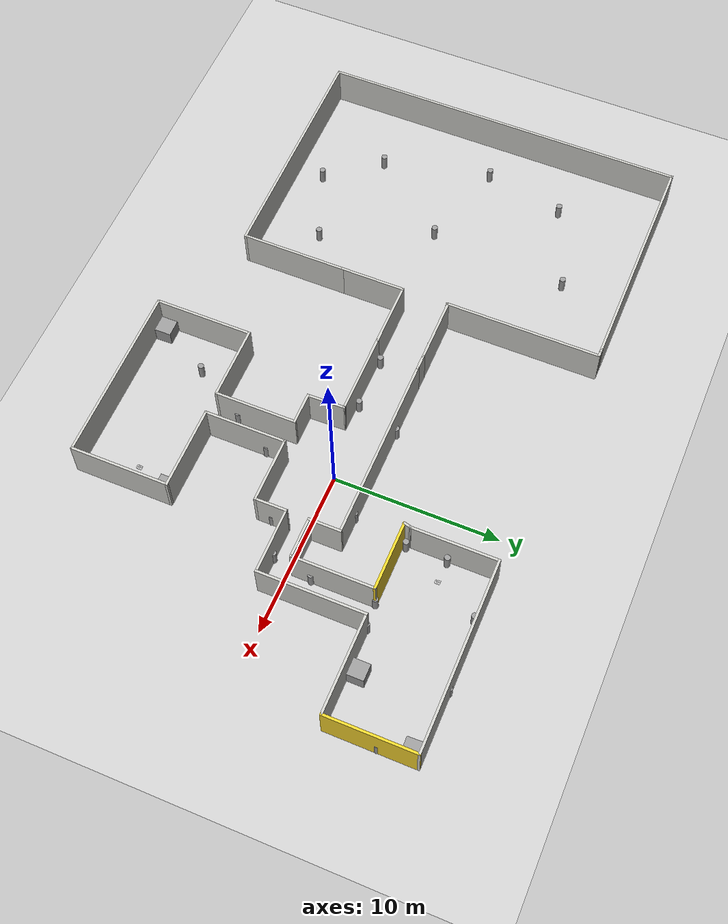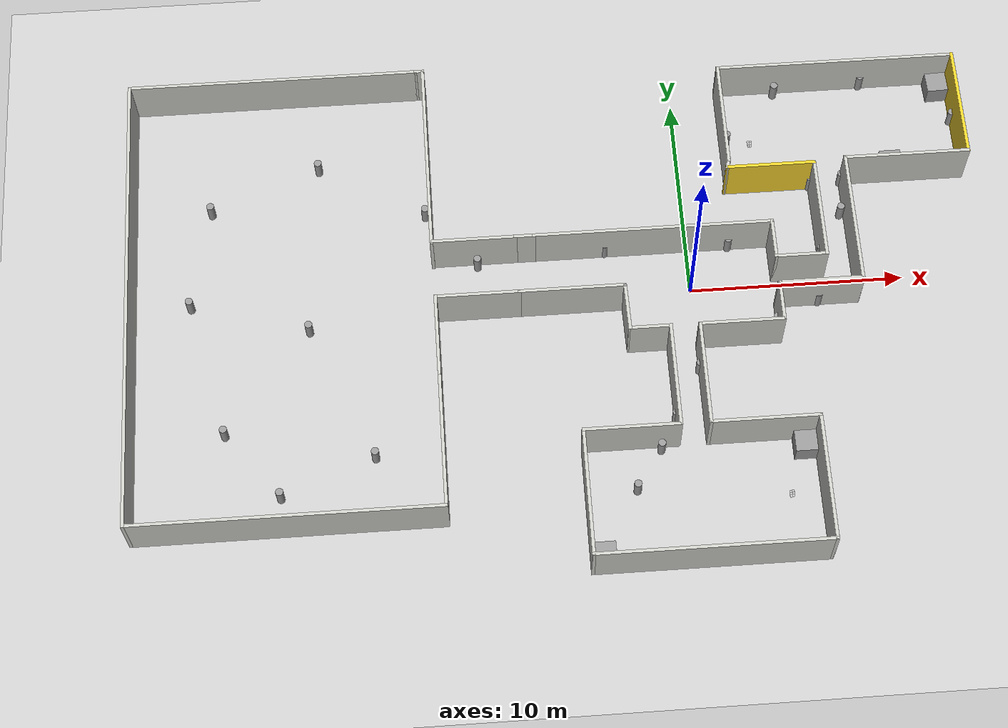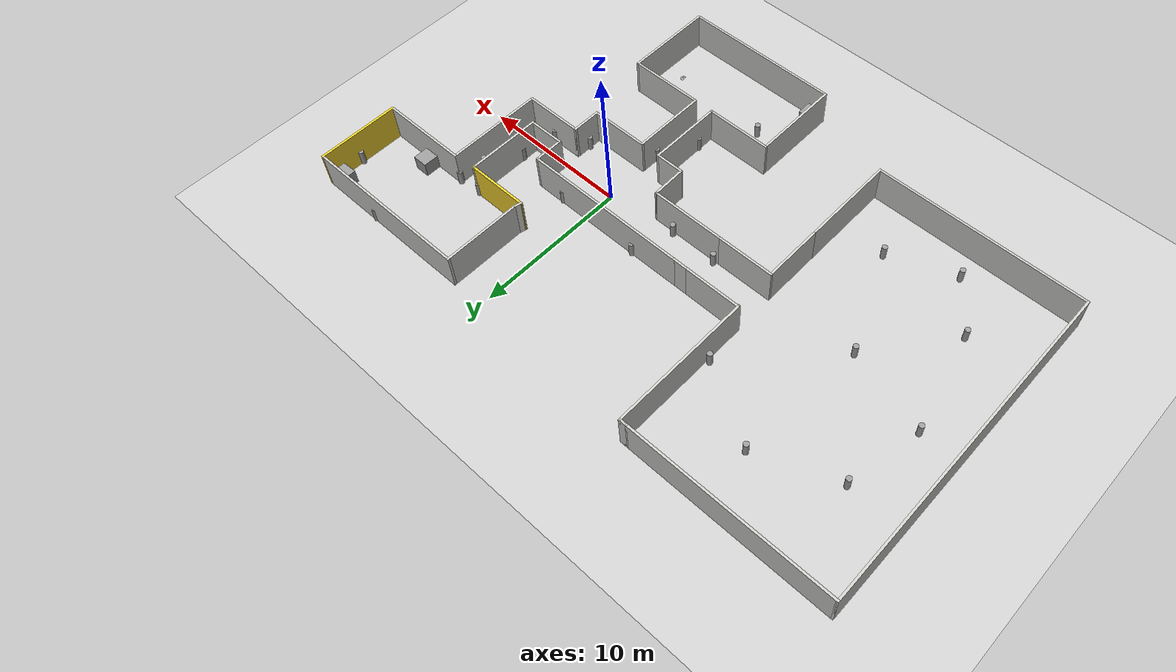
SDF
<sdf version="1.7">
 <world name="default">
  <light name="sun" type="directional">
   <pose>0 0 10 0 -0 0</pose>
   <diffuse>0.8 0.8 0.8 1</diffuse>
   <specular>0.2 0.2 0.2 1</specular>
   <attenuation>
    <range>1000</range>
    <constant>0.9</constant>
    <linear>0.01</linear>
    <quadratic>0.001</quadratic>
   </attenuation>
   <direction>-0.5 0.1 -0.9</direction>
   <spot><inner_angle>0</inner_angle><outer_angle>0</outer_angle><falloff>0</falloff></spot>
  </light>
  <model name="ground_plane">
   <static>1</static>
   <link name="link">
    <collision name="collision">
     <geometry><plane><normal>0 0 1</normal><size>100 100</size></plane></geometry>
     <surface><friction><ode><mu>100</mu><mu2>50</mu2></ode></friction></surface>
    </collision>
    <visual name="visual">
     <cast_shadows>0</cast_shadows>
     <geometry><plane><normal>0 0 1</normal><size>100 100</size></plane></geometry>
     <material>
      <script><uri>file://media/materials/scripts/gazebo.material</uri><name>Gazebo/Grey</name></script>
     </material>
    </visual>
   </link>
  </model>
  <gravity>0 0 -9.8</gravity>
  <magnetic_field>6e-06 2.3e-05 -4.2e-05</magnetic_field>
  <atmosphere type="adiabatic"/>
  <physics type="ode">
   <max_step_size>0.001</max_step_size>
   <real_time_factor>1</real_time_factor>
   <real_time_update_rate>1000</real_time_update_rate>
  </physics>
  <scene><ambient>0.4 0.4 0.4 1</ambient><background>0.7 0.7 0.7 1</background><shadows>1</shadows></scene>
  <audio><device>default</device></audio>
  <spherical_coordinates>
   <surface_model>EARTH_WGS84</surface_model>
   <latitude_deg>0</latitude_deg>
   <longitude_deg>0</longitude_deg>
   <elevation>0</elevation>
   <heading_deg>0</heading_deg>
  </spherical_coordinates>
  <model name="Prueba_3">
   <pose>-6.21353 -1.07107 0 0 -0 0</pose>
   <link name="Wall_13">
    <collision name="Wall_13_Collision">
     <geometry><box><size>2 0.15 2.5</size></box></geometry>
     <pose>0 0 1.25 0 -0 0</pose>
    </collision>
    <visual name="Wall_13_Visual">
     <pose>0 0 1.25 0 -0 0</pose>
     <geometry><box><size>2 0.15 2.5</size></box></geometry>
     <material>
      <script><uri>file://media/materials/scripts/gazebo.material</uri><name>Gazebo/CeilingTiled</name></script>
      <ambient>0.964706 0.827451 0.176471 1</ambient>
     </material>
     <meta><layer>0</layer></meta>
    </visual>
    <pose>10.1 -0.9 0 0 -0 -1.5708</pose>
   </link>
   <link name="Wall_17">
    <collision name="Wall_17_Collision">
     <geometry><box><size>4 0.15 2.5</size></box></geometry>
     <pose>0 0 1.25 0 -0 0</pose>
    </collision>
    <visual name="Wall_17_Visual">
     <pose>0 0 1.25 0 -0 0</pose>
     <geometry><box><size>4 0.15 2.5</size></box></geometry>
     <material>
      <script><uri>file://media/materials/scripts/gazebo.material</uri><name>Gazebo/CeilingTiled</name></script>
      <ambient>0.964706 0.827451 0.176471 1</ambient>
     </material>
     <meta><layer>0</layer></meta>
    </visual>
    <pose>8.175 -1.825 0 0 -0 3.14159</pose>
   </link>
   <link name="Wall_23">
    <collision name="Wall_23_Collision">
     <geometry><box><size>2 0.15 2.5</size></box></geometry>
     <pose>0 0 1.25 0 -0 0</pose>
    </collision>
    <visual name="Wall_23_Visual">
     <pose>0 0 1.25 0 -0 0</pose>
     <geometry><box><size>2 0.15 2.5</size></box></geometry>
     <material>
      <script><uri>file://media/materials/scripts/gazebo.material</uri><name>Gazebo/CeilingTiled</name></script>
      <ambient>0.964706 0.827451 0.176471 1</ambient>
     </material>
     <meta><layer>0</layer></meta>
    </visual>
    <pose>3.975 -1.825 0 0 -0 3.14159</pose>
   </link>
   <link name="Wall_39">
    <collision name="Wall_39_Collision">
     <geometry><box><size>11.25 0.15 2.5</size></box></geometry>
     <pose>0 0 1.25 0 -0 0</pose>
    </collision>
    <visual name="Wall_39_Visual">
     <pose>0 0 1.25 0 -0 0</pose>
     <geometry><box><size>11.25 0.15 2.5</size></box></geometry>
     <material>
      <script><uri>file://media/materials/scripts/gazebo.material</uri><name>Gazebo/CeilingTiled</name></script>
      <ambient>0.964706 0.827451 0.176471 1</ambient>
     </material>
     <meta><layer>0</layer></meta>
    </visual>
    <pose>4.55 3.225 0 0 -0 3.14159</pose>
   </link>
   <link name="Wall_41">
    <collision name="Wall_41_Collision">
     <geometry><box><size>1 0.15 2.5</size></box></geometry>
     <pose>0 0 1.25 0 -0 0</pose>
    </collision>
    <visual name="Wall_41_Visual">
     <pose>0 0 1.25 0 -0 0</pose>
     <geometry><box><size>1 0.15 2.5</size></box></geometry>
     <material>
      <script><uri>file://media/materials/scripts/gazebo.material</uri><name>Gazebo/CeilingTiled</name></script>
      <ambient>0.964706 0.827451 0.176471 1</ambient>
     </material>
     <meta><layer>0</layer></meta>
    </visual>
    <pose>-1.425 3.225 0 0 -0 3.14159</pose>
   </link>
   <link name="Wall_44">
    <collision name="Wall_44_Collision">
     <geometry><box><size>5 0.15 2.5</size></box></geometry>
     <pose>0 0 1.25 0 -0 0</pose>
    </collision>
    <visual name="Wall_44_Visual">
     <pose>0 0 1.25 0 -0 0</pose>
     <geometry><box><size>5 0.15 2.5</size></box></geometry>
     <material>
      <script><uri>file://media/materials/scripts/gazebo.material</uri><name>Gazebo/CeilingTiled</name></script>
      <ambient>0.964706 0.827451 0.176471 1</ambient>
     </material>
     <meta><layer>0</layer></meta>
    </visual>
    <pose>0.575 0.375 0 0 -0 0</pose>
   </link>
   <link name="Wall_45">
    <collision name="Wall_45_Collision">
     <geometry><box><size>0.15 0.15 2.5</size></box></geometry>
     <pose>0 0 1.25 0 -0 0</pose>
    </collision>
    <visual name="Wall_45_Visual">
     <pose>0 0 1.25 0 -0 0</pose>
     <geometry><box><size>0.15 0.15 2.5</size></box></geometry>
     <material>
      <script><uri>file://media/materials/scripts/gazebo.material</uri><name>Gazebo/Grey</name></script>
      <ambient>1 1 1 1</ambient>
     </material>
     <meta><layer>0</layer></meta>
    </visual>
    <pose>3 0.375 0 0 -0 0</pose>
   </link>
   <link name="Wall_46">
    <collision name="Wall_46_Collision">
     <geometry><box><size>2.35057 0.15 2.5</size></box></geometry>
     <pose>0 0 1.25 0 -0 0</pose>
    </collision>
    <visual name="Wall_46_Visual">
     <pose>0 0 1.25 0 -0 0</pose>
     <geometry><box><size>2.35057 0.15 2.5</size></box></geometry>
     <material>
      <script><uri>file://media/materials/scripts/gazebo.material</uri><name>Gazebo/CeilingTiled</name></script>
      <ambient>0.964706 0.827451 0.176471 1</ambient>
     </material>
     <meta><layer>0</layer></meta>
    </visual>
    <pose>3.025 -0.725 0 0 -0 -1.54807</pose>
   </link>
   <link name="Wall_48">
    <collision name="Wall_48_Collision">
     <geometry><box><size>5 0.15 2.5</size></box></geometry>
     <pose>0 0 1.25 0 -0 0</pose>
    </collision>
    <visual name="Wall_48_Visual">
     <pose>0 0 1.25 0 -0 0</pose>
     <geometry><box><size>5 0.15 2.5</size></box></geometry>
     <material>
      <script><uri>file://media/materials/scripts/gazebo.material</uri><name>Gazebo/CeilingTiled</name></script>
      <ambient>0.964706 0.827451 0.176471 1</ambient>
     </material>
     <meta><layer>0</layer></meta>
    </visual>
    <pose>4.9 -4.25 0 0 -0 -1.5708</pose>
   </link>
   <link name="Wall_50">
    <collision name="Wall_50_Collision">
     <geometry><box><size>5 0.15 2.5</size></box></geometry>
     <pose>0 0 1.25 0 -0 0</pose>
    </collision>
    <visual name="Wall_50_Visual">
     <pose>0 0 1.25 0 -0 0</pose>
     <geometry><box><size>5 0.15 2.5</size></box></geometry>
     <material>
      <script><uri>file://media/materials/scripts/gazebo.material</uri><name>Gazebo/CeilingTiled</name></script>
      <ambient>0.964706 0.827451 0.176471 1</ambient>
     </material>
     <meta><layer>0</layer></meta>
    </visual>
    <pose>6.25 -4.25 0 0 -0 -1.5708</pose>
   </link>
   <link name="Wall_52">
    <collision name="Wall_52_Collision">
     <geometry><box><size>4 0.15 2.5</size></box></geometry>
     <pose>0 0 1.25 0 -0 0</pose>
    </collision>
    <visual name="Wall_52_Visual">
     <pose>0 0 1.25 0 -0 0</pose>
     <geometry><box><size>4 0.15 2.5</size></box></geometry>
     <material>
      <script><uri>file://media/materials/scripts/gazebo.material</uri><name>Gazebo/CeilingTiled</name></script>
      <ambient>0.964706 0.827451 0.176471 1</ambient>
     </material>
     <meta><layer>0</layer></meta>
    </visual>
    <pose>12.025 0.025 0 0 -0 0</pose>
   </link>
   <link name="Wall_54">
    <collision name="Wall_54_Collision">
     <geometry><box><size>2.5 0.15 2.5</size></box></geometry>
     <pose>0 0 1.25 0 -0 0</pose>
    </collision>
    <visual name="Wall_54_Visual">
     <pose>0 0 1.25 0 -0 0</pose>
     <geometry><box><size>2.5 0.15 2.5</size></box></geometry>
     <material>
      <script><uri>file://media/materials/scripts/gazebo.material</uri><name>Gazebo/CeilingTiled</name></script>
      <ambient>0.964706 0.827451 0.176471 1</ambient>
     </material>
     <meta><layer>0</layer></meta>
    </visual>
    <pose>11.275 1.375 0 0 -0 0</pose>
   </link>
   <link name="Wall_57">
    <collision name="Wall_57_Collision">
     <geometry><box><size>5 0.15 2.5</size></box></geometry>
     <pose>0 0 1.25 0 -0 0</pose>
    </collision>
    <visual name="Wall_57_Visual">
     <pose>0 0 1.25 0 -0 0</pose>
     <geometry><box><size>5 0.15 2.5</size></box></geometry>
     <material>
      <script><uri>file://media/materials/scripts/gazebo.material</uri><name>Gazebo/CeilingTiled</name></script>
      <ambient>0.964706 0.827451 0.176471 1</ambient>
     </material>
     <meta><layer>0</layer></meta>
    </visual>
    <pose>12.45 3.8 0 0 -0 1.5708</pose>
   </link>
   <link name="Wall_6">
    <collision name="Wall_6_Collision">
     <geometry><box><size>2 0.15 2.5</size></box></geometry>
     <pose>0 0 1.25 0 -0 0</pose>
    </collision>
    <visual name="Wall_6_Visual">
     <pose>0 0 1.25 0 -0 0</pose>
     <geometry><box><size>2 0.15 2.5</size></box></geometry>
     <material>
      <script><uri>file://media/materials/scripts/gazebo.material</uri><name>Gazebo/CeilingTiled</name></script>
      <ambient>0.964706 0.827451 0.176471 1</ambient>
     </material>
     <meta><layer>0</layer></meta>
    </visual>
    <pose>10.1 2.3 0 0 -0 -1.5708</pose>
   </link>
   <link name="Wall_60">
    <collision name="Wall_60_Collision">
     <geometry><box><size>6.5 0.15 2.5</size></box></geometry>
     <pose>0 0 1.25 0 -0 0</pose>
    </collision>
    <visual name="Wall_60_Visual">
     <pose>0 0 1.25 0 -0 0</pose>
     <geometry><box><size>6.5 0.15 2.5</size></box></geometry>
     <material>
      <script><uri>file://media/materials/scripts/gazebo.material</uri><name>Gazebo/CeilingTiled</name></script>
      <ambient>0.964706 0.827451 0.176471 1</ambient>
     </material>
     <meta><layer>0</layer></meta>
    </visual>
    <pose>13.95 3.2 0 0 -0 1.5708</pose>
   </link>
   <link name="Wall_61">
    <collision name="Wall_61_Collision">
     <geometry><box><size>6 0.15 2.5</size></box></geometry>
     <pose>0 0 1.25 0 -0 0</pose>
    </collision>
    <visual name="Wall_61_Visual">
     <pose>0 0 1.25 0 -0 0</pose>
     <geometry><box><size>6 0.15 2.5</size></box></geometry>
     <material>
      <script><uri>file://media/materials/scripts/gazebo.material</uri><name>Gazebo/CeilingTiled</name></script>
      <ambient>0.964706 0.827451 0.176471 1</ambient>
     </material>
     <meta><layer>0</layer></meta>
    </visual>
    <pose>16.875 6.375 0 0 -0 0</pose>
   </link>
   <link name="Wall_62">
    <collision name="Wall_62_Collision">
     <geometry><box><size>5.5 0.15 2.5</size></box></geometry>
     <pose>0 0 1.25 0 -0 0</pose>
    </collision>
    <visual name="Wall_62_Visual">
     <pose>0 0 1.25 0 -0 0</pose>
     <geometry><box><size>5.5 0.15 2.5</size></box></geometry>
     <material>
      <script><uri>file://media/materials/scripts/gazebo.material</uri><name>Gazebo/Grey</name></script>
      <ambient>0.964706 0.827451 0.176471 1</ambient>
     </material>
     <meta><layer>0</layer></meta>
    </visual>
    <pose>19.8 9.05 0 0 -0 1.5708</pose>
   </link>
   <link name="Wall_63">
    <collision name="Wall_63_Collision">
     <geometry><box><size>11.5 0.15 2.5</size></box></geometry>
     <pose>0 0 1.25 0 -0 0</pose>
    </collision>
    <visual name="Wall_63_Visual">
     <pose>0 0 1.25 0 -0 0</pose>
     <geometry><box><size>11.5 0.15 2.5</size></box></geometry>
     <material>
      <script><uri>file://media/materials/scripts/gazebo.material</uri><name>Gazebo/CeilingTiled</name></script>
      <ambient>0.964706 0.827451 0.176471 1</ambient>
     </material>
     <meta><layer>0</layer></meta>
    </visual>
    <pose>14.125 11.725 0 0 -0 3.14159</pose>
   </link>
   <link name="Wall_64">
    <collision name="Wall_64_Collision">
     <geometry><box><size>5.25 0.15 2.5</size></box></geometry>
     <pose>0 0 1.25 0 -0 0</pose>
    </collision>
    <visual name="Wall_64_Visual">
     <pose>0 0 1.25 0 -0 0</pose>
     <geometry><box><size>5.25 0.15 2.5</size></box></geometry>
     <material>
      <script><uri>file://media/materials/scripts/gazebo.material</uri><name>Gazebo/CeilingTiled</name></script>
      <ambient>0.964706 0.827451 0.176471 1</ambient>
     </material>
     <meta><layer>0</layer></meta>
    </visual>
    <pose>8.45 9.175 0 0 -0 -1.5708</pose>
   </link>
   <link name="Wall_67">
    <collision name="Wall_67_Collision">
     <geometry><box><size>4.25 0.15 2.5</size></box></geometry>
     <pose>0 0 1.25 0 -0 0</pose>
    </collision>
    <visual name="Wall_67_Visual">
     <pose>0 0 1.25 0 -0 0</pose>
     <geometry><box><size>4.25 0.15 2.5</size></box></geometry>
     <material>
      <script><uri>file://media/materials/scripts/gazebo.material</uri><name>Gazebo/Grey</name></script>
      <ambient>0.964706 0.827451 0.176471 1</ambient>
     </material>
     <meta><layer>0</layer></meta>
    </visual>
    <pose>10.4 6.225 0 0 -0 3.14159</pose>
   </link>
   <link name="Wall_68">
    <collision name="Wall_68_Collision">
     <geometry><box><size>0.562311 0.15 2.5</size></box></geometry>
     <pose>0 0 1.25 0 -0 0</pose>
    </collision>
    <visual name="Wall_68_Visual">
     <pose>0 0 1.25 0 -0 0</pose>
     <geometry><box><size>0.562311 0.15 2.5</size></box></geometry>
     <material>
      <script><uri>file://media/materials/scripts/gazebo.material</uri><name>Gazebo/CeilingTiled</name></script>
      <ambient>0.964706 0.827451 0.176471 1</ambient>
     </material>
     <meta><layer>0</layer></meta>
    </visual>
    <pose>8.4 6.425 0 0 -0 1.32582</pose>
   </link>
   <link name="Wall_70">
    <collision name="Wall_70_Collision">
     <geometry><box><size>4.5 0.15 2.5</size></box></geometry>
     <pose>0 0 1.25 0 -0 0</pose>
    </collision>
    <visual name="Wall_70_Visual">
     <pose>0 0 1.25 0 -0 0</pose>
     <geometry><box><size>4.5 0.15 2.5</size></box></geometry>
     <material>
      <script><uri>file://media/materials/scripts/gazebo.material</uri><name>Gazebo/CeilingTiled</name></script>
      <ambient>0.964706 0.827451 0.176471 1</ambient>
     </material>
     <meta><layer>0</layer></meta>
    </visual>
    <pose>2.725 -6.675 0 0 -0 3.14159</pose>
   </link>
   <link name="Wall_71">
    <collision name="Wall_71_Collision">
     <geometry><box><size>6 0.15 2.5</size></box></geometry>
     <pose>0 0 1.25 0 -0 0</pose>
    </collision>
    <visual name="Wall_71_Visual">
     <pose>0 0 1.25 0 -0 0</pose>
     <geometry><box><size>6 0.15 2.5</size></box></geometry>
     <material>
      <script><uri>file://media/materials/scripts/gazebo.material</uri><name>Gazebo/CeilingTiled</name></script>
      <ambient>0.964706 0.827451 0.176471 1</ambient>
     </material>
     <meta><layer>0</layer></meta>
    </visual>
    <pose>0.55 -9.6 0 0 -0 -1.5708</pose>
   </link>
   <link name="Wall_72">
    <collision name="Wall_72_Collision">
     <geometry><box><size>10.75 0.15 2.5</size></box></geometry>
     <pose>0 0 1.25 0 -0 0</pose>
    </collision>
    <visual name="Wall_72_Visual">
     <pose>0 0 1.25 0 -0 0</pose>
     <geometry><box><size>10.75 0.15 2.5</size></box></geometry>
     <material>
      <script><uri>file://media/materials/scripts/gazebo.material</uri><name>Gazebo/CeilingTiled</name></script>
      <ambient>0.964706 0.827451 0.176471 1</ambient>
     </material>
     <meta><layer>0</layer></meta>
    </visual>
    <pose>5.85 -12.525 0 0 -0 0</pose>
   </link>
   <link name="Wall_73">
    <collision name="Wall_73_Collision">
     <geometry><box><size>6 0.15 2.5</size></box></geometry>
     <pose>0 0 1.25 0 -0 0</pose>
    </collision>
    <visual name="Wall_73_Visual">
     <pose>0 0 1.25 0 -0 0</pose>
     <geometry><box><size>6 0.15 2.5</size></box></geometry>
     <material>
      <script><uri>file://media/materials/scripts/gazebo.material</uri><name>Gazebo/CeilingTiled</name></script>
      <ambient>0.964706 0.827451 0.176471 1</ambient>
     </material>
     <meta><layer>0</layer></meta>
    </visual>
    <pose>11.15 -9.6 0 0 -0 1.5708</pose>
   </link>
   <link name="Wall_74">
    <collision name="Wall_74_Collision">
     <geometry><box><size>5.05 0.15 2.5</size></box></geometry>
     <pose>0 0 1.25 0 -0 0</pose>
    </collision>
    <visual name="Wall_74_Visual">
     <pose>0 0 1.25 0 -0 0</pose>
     <geometry><box><size>5.05 0.15 2.5</size></box></geometry>
     <material>
      <script><uri>file://media/materials/scripts/gazebo.material</uri><name>Gazebo/CeilingTiled</name></script>
      <ambient>0.964706 0.827451 0.176471 1</ambient>
     </material>
     <meta><layer>0</layer></meta>
    </visual>
    <pose>8.7 -6.675 0 0 -0 3.14159</pose>
   </link>
   <link name="Wall_77">
    <collision name="Wall_77_Collision">
     <geometry><box><size>4 0.15 2.5</size></box></geometry>
     <pose>0 0 1.25 0 -0 0</pose>
    </collision>
    <visual name="Wall_77_Visual">
     <pose>0 0 1.25 0 -0 0</pose>
     <geometry><box><size>4 0.15 2.5</size></box></geometry>
     <material>
      <script><uri>file://media/materials/scripts/gazebo.material</uri><name>Gazebo/CeilingTiled</name></script>
      <ambient>0.964706 0.827451 0.176471 1</ambient>
     </material>
     <meta><layer>0</layer></meta>
    </visual>
    <pose>-3.775 0.375 0 0 -0 3.14159</pose>
   </link>
   <link name="Wall_79">
    <collision name="Wall_79_Collision">
     <geometry><box><size>4 0.15 2.5</size></box></geometry>
     <pose>0 0 1.25 0 -0 0</pose>
    </collision>
    <visual name="Wall_79_Visual">
     <pose>0 0 1.25 0 -0 0</pose>
     <geometry><box><size>4 0.15 2.5</size></box></geometry>
     <material>
      <script><uri>file://media/materials/scripts/gazebo.material</uri><name>Gazebo/CeilingTiled</name></script>
      <ambient>0.964706 0.827451 0.176471 1</ambient>
     </material>
     <meta><layer>0</layer></meta>
    </visual>
    <pose>-3.775 3.225 0 0 -0 3.14159</pose>
   </link>
   <link name="Wall_81">
    <collision name="Wall_81_Collision">
     <geometry><box><size>4 0.15 2.5</size></box></geometry>
     <pose>0 0 1.25 0 -0 0</pose>
    </collision>
    <visual name="Wall_81_Visual">
     <pose>0 0 1.25 0 -0 0</pose>
     <geometry><box><size>4 0.15 2.5</size></box></geometry>
     <material>
      <script><uri>file://media/materials/scripts/gazebo.material</uri><name>Gazebo/CeilingTiled</name></script>
      <ambient>0.964706 0.827451 0.176471 1</ambient>
     </material>
     <meta><layer>0</layer></meta>
    </visual>
    <pose>-5.7 -1.55 0 0 -0 -1.5708</pose>
   </link>
   <link name="Wall_85">
    <collision name="Wall_85_Collision">
     <geometry><box><size>6.5 0.15 2.5</size></box></geometry>
     <pose>0 0 1.25 0 -0 0</pose>
    </collision>
    <visual name="Wall_85_Visual">
     <pose>0 0 1.25 0 -0 0</pose>
     <geometry><box><size>6.5 0.15 2.5</size></box></geometry>
     <material>
      <script><uri>file://media/materials/scripts/gazebo.material</uri><name>Gazebo/CeilingTiled</name></script>
      <ambient>0.964706 0.827451 0.176471 1</ambient>
     </material>
     <meta><layer>0</layer></meta>
    </visual>
    <pose>-5.7 -6.65 0 0 -0 -1.5708</pose>
   </link>
   <link name="Wall_86">
    <collision name="Wall_86_Collision">
     <geometry><box><size>14.25 0.15 2.5</size></box></geometry>
     <pose>0 0 1.25 0 -0 0</pose>
    </collision>
    <visual name="Wall_86_Visual">
     <pose>0 0 1.25 0 -0 0</pose>
     <geometry><box><size>14.25 0.15 2.5</size></box></geometry>
     <material>
      <script><uri>file://media/materials/scripts/gazebo.material</uri><name>Gazebo/CeilingTiled</name></script>
      <ambient>0.964706 0.827451 0.176471 1</ambient>
     </material>
     <meta><layer>0</layer></meta>
    </visual>
    <pose>-12.75 -9.825 0 0 -0 3.14159</pose>
   </link>
   <link name="Wall_87">
    <collision name="Wall_87_Collision">
     <geometry><box><size>22.5 0.15 2.5</size></box></geometry>
     <pose>0 0 1.25 0 -0 0</pose>
    </collision>
    <visual name="Wall_87_Visual">
     <pose>0 0 1.25 0 -0 0</pose>
     <geometry><box><size>22.5 0.15 2.5</size></box></geometry>
     <material>
      <script><uri>file://media/materials/scripts/gazebo.material</uri><name>Gazebo/CeilingTiled</name></script>
      <ambient>0.964706 0.827451 0.176471 1</ambient>
     </material>
     <meta><layer>0</layer></meta>
    </visual>
    <pose>-19.8 1.35 0 0 -0 1.5708</pose>
   </link>
   <link name="Wall_88">
    <collision name="Wall_88_Collision">
     <geometry><box><size>13.75 0.15 2.5</size></box></geometry>
     <pose>0 0 1.25 0 -0 0</pose>
    </collision>
    <visual name="Wall_88_Visual">
     <pose>0 0 1.25 0 -0 0</pose>
     <geometry><box><size>13.75 0.15 2.5</size></box></geometry>
     <material>
      <script><uri>file://media/materials/scripts/gazebo.material</uri><name>Gazebo/CeilingTiled</name></script>
      <ambient>0.964706 0.827451 0.176471 1</ambient>
     </material>
     <meta><layer>0</layer></meta>
    </visual>
    <pose>-13 12.525 0 0 -0 0</pose>
   </link>
   <link name="Wall_89">
    <collision name="Wall_89_Collision">
     <geometry><box><size>0.25 0.15 2.5</size></box></geometry>
     <pose>0 0 1.25 0 -0 0</pose>
    </collision>
    <visual name="Wall_89_Visual">
     <pose>0 0 1.25 0 -0 0</pose>
     <geometry><box><size>0.25 0.15 2.5</size></box></geometry>
     <material>
      <script><uri>file://media/materials/scripts/gazebo.material</uri><name>Gazebo/CeilingTiled</name></script>
      <ambient>0.964706 0.827451 0.176471 1</ambient>
     </material>
     <meta><layer>0</layer></meta>
    </visual>
    <pose>-6.15 12.525 0 0 -0 0</pose>
   </link>
   <link name="Wall_90">
    <collision name="Wall_90_Collision">
     <geometry><box><size>0.5 0.15 2.5</size></box></geometry>
     <pose>0 0 1.25 0 -0 0</pose>
    </collision>
    <visual name="Wall_90_Visual">
     <pose>0 0 1.25 0 -0 0</pose>
     <geometry><box><size>0.5 0.15 2.5</size></box></geometry>
     <material>
      <script><uri>file://media/materials/scripts/gazebo.material</uri><name>Gazebo/CeilingTiled</name></script>
      <ambient>0.964706 0.827451 0.176471 1</ambient>
     </material>
     <meta><layer>0</layer></meta>
    </visual>
    <pose>-5.925 12.525 0 0 -0 0</pose>
   </link>
   <link name="Wall_91">
    <collision name="Wall_91_Collision">
     <geometry><box><size>9.5 0.15 2.5</size></box></geometry>
     <pose>0 0 1.25 0 -0 0</pose>
    </collision>
    <visual name="Wall_91_Visual">
     <pose>0 0 1.25 0 -0 0</pose>
     <geometry><box><size>9.5 0.15 2.5</size></box></geometry>
     <material>
      <script><uri>file://media/materials/scripts/gazebo.material</uri><name>Gazebo/CeilingTiled</name></script>
      <ambient>0.964706 0.827451 0.176471 1</ambient>
     </material>
     <meta><layer>0</layer></meta>
    </visual>
    <pose>-5.75 7.85 0 0 -0 -1.5708</pose>
   </link>
   <static>1</static>
  </model>
  <model name="unit_box">
   <pose>-5.08182 -13.0144 0.5 0 -0 0.012138</pose>
   <link name="link">
    <inertial>
     <mass>1</mass>
     <inertia>
      <ixx>0.166667</ixx>
      <ixy>0</ixy>
      <ixz>0</ixz>
      <iyy>0.166667</iyy>
      <iyz>0</iyz>
      <izz>0.166667</izz>
     </inertia>
    </inertial>
    <collision name="collision"><geometry><box><size>1 1 1</size></box></geometry></collision>
    <visual name="visual">
     <geometry><box><size>1 1 1</size></box></geometry>
     <material>
      <script><name>Gazebo/Grey</name><uri>file://media/materials/scripts/gazebo.material</uri></script>
     </material>
    </visual>
   </link>
  </model>
  <model name="unit_box_0">
   <pose>4.36122 -8.32108 0.5 0 -0 6e-06</pose>
   <link name="link">
    <inertial>
     <mass>1</mass>
     <inertia>
      <ixx>0.166667</ixx>
      <ixy>0</ixy>
      <ixz>0</ixz>
      <iyy>0.166667</iyy>
      <iyz>0</iyz>
      <izz>0.166667</izz>
     </inertia>
    </inertial>
    <collision name="collision"><geometry><box><size>1 1 1</size></box></geometry></collision>
    <visual name="visual">
     <geometry><box><size>1 1 1</size></box></geometry>
     <material>
      <script><name>Gazebo/Grey</name><uri>file://media/materials/scripts/gazebo.material</uri></script>
     </material>
    </visual>
   </link>
  </model>
  <model name="unit_cylinder">
   <pose>-3.3537 -9.88396 0.499994 0 -0 1.2e-05</pose>
   <link name="link">
    <inertial>
     <mass>1</mass>
     <inertia><ixx>0.145833</ixx><ixy>0</ixy><ixz>0</ixz><iyy>0.145833</iyy><iyz>0</iyz><izz>0.125</izz></inertia>
    </inertial>
    <collision name="collision">
     <geometry><cylinder><radius>0.176638</radius><length>1</length></cylinder></geometry>
    </collision>
    <visual name="visual">
     <geometry><cylinder><radius>0.176638</radius><length>1</length></cylinder></geometry>
     <material>
      <script><name>Gazebo/Grey</name><uri>file://media/materials/scripts/gazebo.material</uri></script>
     </material>
    </visual>
   </link>
  </model>
  <model name="unit_cylinder_clone">
   <pose>-2.11066 -7.99771 0.499997 0 -0 7.3e-05</pose>
   <link name="link">
    <inertial>
     <mass>1</mass>
     <inertia><ixx>0.145833</ixx><ixy>0</ixy><ixz>0</ixz><iyy>0.145833</iyy><iyz>0</iyz><izz>0.125</izz></inertia>
    </inertial>
    <collision name="collision">
     <geometry><cylinder><radius>0.176638</radius><length>1</length></cylinder></geometry>
    </collision>
    <visual name="visual">
     <geometry><cylinder><radius>0.176638</radius><length>1</length></cylinder></geometry>
     <material>
      <script><name>Gazebo/Grey</name><uri>file://media/materials/scripts/gazebo.material</uri></script>
     </material>
    </visual>
   </link>
  </model>
  <model name="unit_cylinder_clone_0">
   <pose>-1.31414 -6.53553 0.499999 0 -0 7e-06</pose>
   <link name="link">
    <inertial>
     <mass>1</mass>
     <inertia><ixx>0.145833</ixx><ixy>0</ixy><ixz>0</ixz><iyy>0.145833</iyy><iyz>0</iyz><izz>0.125</izz></inertia>
    </inertial>
    <collision name="collision">
     <geometry><cylinder><radius>0.176638</radius><length>1</length></cylinder></geometry>
    </collision>
    <visual name="visual">
     <geometry><cylinder><radius>0.176638</radius><length>1</length></cylinder></geometry>
     <material>
      <script><name>Gazebo/Grey</name><uri>file://media/materials/scripts/gazebo.material</uri></script>
     </material>
    </visual>
   </link>
  </model>
  <model name="unit_cylinder_clone_1">
   <pose>0.005123 -4.14459 0.499991 0 -0 6e-06</pose>
   <link name="link">
    <inertial>
     <mass>1</mass>
     <inertia><ixx>0.145833</ixx><ixy>0</ixy><ixz>0</ixz><iyy>0.145833</iyy><iyz>0</iyz><izz>0.125</izz></inertia>
    </inertial>
    <collision name="collision">
     <geometry><cylinder><radius>0.176638</radius><length>1</length></cylinder></geometry>
    </collision>
    <visual name="visual">
     <geometry><cylinder><radius>0.176638</radius><length>1</length></cylinder></geometry>
     <material>
      <script><name>Gazebo/Grey</name><uri>file://media/materials/scripts/gazebo.material</uri></script>
     </material>
    </visual>
   </link>
  </model>
  <model name="unit_cylinder_clone_2">
   <pose>3.82159 -2.05059 0.499991 0 -0 5e-06</pose>
   <link name="link">
    <inertial>
     <mass>1</mass>
     <inertia><ixx>0.145833</ixx><ixy>0</ixy><ixz>0</ixz><iyy>0.145833</iyy><iyz>0</iyz><izz>0.125</izz></inertia>
    </inertial>
    <collision name="collision">
     <geometry><cylinder><radius>0.176638</radius><length>1</length></cylinder></geometry>
    </collision>
    <visual name="visual">
     <geometry><cylinder><radius>0.176638</radius><length>1</length></cylinder></geometry>
     <material>
      <script><name>Gazebo/Grey</name><uri>file://media/materials/scripts/gazebo.material</uri></script>
     </material>
    </visual>
   </link>
  </model>
  <model name="unit_cylinder_clone_3">
   <pose>1.94954 2.13329 0.499991 0 -0 5e-06</pose>
   <link name="link">
    <inertial>
     <mass>1</mass>
     <inertia><ixx>0.145833</ixx><ixy>0</ixy><ixz>0</ixz><iyy>0.145833</iyy><iyz>0</iyz><izz>0.125</izz></inertia>
    </inertial>
    <collision name="collision">
     <geometry><cylinder><radius>0.176638</radius><length>1</length></cylinder></geometry>
    </collision>
    <visual name="visual">
     <geometry><cylinder><radius>0.176638</radius><length>1</length></cylinder></geometry>
     <material>
      <script><name>Gazebo/Grey</name><uri>file://media/materials/scripts/gazebo.material</uri></script>
     </material>
    </visual>
   </link>
  </model>
  <model name="unit_cylinder_clone_4">
   <pose>-3.87385 2.21753 0.499999 0 -0 6e-06</pose>
   <link name="link">
    <inertial>
     <mass>1</mass>
     <inertia><ixx>0.145833</ixx><ixy>0</ixy><ixz>0</ixz><iyy>0.145833</iyy><iyz>0</iyz><izz>0.125</izz></inertia>
    </inertial>
    <collision name="collision">
     <geometry><cylinder><radius>0.176638</radius><length>1</length></cylinder></geometry>
    </collision>
    <visual name="visual">
     <geometry><cylinder><radius>0.176638</radius><length>1</length></cylinder></geometry>
     <material>
      <script><name>Gazebo/Grey</name><uri>file://media/materials/scripts/gazebo.material</uri></script>
     </material>
    </visual>
   </link>
  </model>
  <model name="unit_cylinder_clone_5">
   <pose>-7.89823 -0.444154 0.499991 0 -0 -0.032468</pose>
   <link name="link">
    <inertial>
     <mass>1</mass>
     <inertia><ixx>0.145833</ixx><ixy>0</ixy><ixz>0</ixz><iyy>0.145833</iyy><iyz>0</iyz><izz>0.125</izz></inertia>
    </inertial>
    <collision name="collision">
     <geometry><cylinder><radius>0.176638</radius><length>1</length></cylinder></geometry>
    </collision>
    <visual name="visual">
     <geometry><cylinder><radius>0.176638</radius><length>1</length></cylinder></geometry>
     <material>
      <script><name>Gazebo/Grey</name><uri>file://media/materials/scripts/gazebo.material</uri></script>
     </material>
    </visual>
   </link>
  </model>
  <model name="unit_cylinder_clone_6">
   <pose>-9.88206 1.90229 0.499999 0 -0 1.4e-05</pose>
   <link name="link">
    <inertial>
     <mass>1</mass>
     <inertia><ixx>0.145833</ixx><ixy>0</ixy><ixz>0</ixz><iyy>0.145833</iyy><iyz>0</iyz><izz>0.125</izz></inertia>
    </inertial>
    <collision name="collision">
     <geometry><cylinder><radius>0.176638</radius><length>1</length></cylinder></geometry>
    </collision>
    <visual name="visual">
     <geometry><cylinder><radius>0.176638</radius><length>1</length></cylinder></geometry>
     <material>
      <script><name>Gazebo/Grey</name><uri>file://media/materials/scripts/gazebo.material</uri></script>
     </material>
    </visual>
   </link>
  </model>
  <model name="unit_cylinder_clone_7">
   <pose>-4.71432 -0.444432 0.499991 0 -0 0</pose>
   <link name="link">
    <inertial>
     <mass>1</mass>
     <inertia><ixx>0.145833</ixx><ixy>0</ixy><ixz>0</ixz><iyy>0.145833</iyy><iyz>0</iyz><izz>0.125</izz></inertia>
    </inertial>
    <collision name="collision">
     <geometry><cylinder><radius>0.176638</radius><length>1</length></cylinder></geometry>
    </collision>
    <visual name="visual">
     <geometry><cylinder><radius>0.176638</radius><length>1</length></cylinder></geometry>
     <material>
      <script><name>Gazebo/Grey</name><uri>file://media/materials/scripts/gazebo.material</uri></script>
     </material>
    </visual>
   </link>
  </model>
  <model name="unit_cylinder_clone_8">
   <pose>-12.2157 4.74695 0.499991 0 -0 5e-06</pose>
   <link name="link">
    <inertial>
     <mass>1</mass>
     <inertia><ixx>0.145833</ixx><ixy>0</ixy><ixz>0</ixz><iyy>0.145833</iyy><iyz>0</iyz><izz>0.125</izz></inertia>
    </inertial>
    <collision name="collision">
     <geometry><cylinder><radius>0.176638</radius><length>1</length></cylinder></geometry>
    </collision>
    <visual name="visual">
     <geometry><cylinder><radius>0.176638</radius><length>1</length></cylinder></geometry>
     <material>
      <script><name>Gazebo/Grey</name><uri>file://media/materials/scripts/gazebo.material</uri></script>
     </material>
    </visual>
   </link>
  </model>
  <model name="unit_cylinder_clone_9">
   <pose>-17.2211 7.57326 0.499991 0 -0 5e-06</pose>
   <link name="link">
    <inertial>
     <mass>1</mass>
     <inertia><ixx>0.145833</ixx><ixy>0</ixy><ixz>0</ixz><iyy>0.145833</iyy><iyz>0</iyz><izz>0.125</izz></inertia>
    </inertial>
    <collision name="collision">
     <geometry><cylinder><radius>0.176638</radius><length>1</length></cylinder></geometry>
    </collision>
    <visual name="visual">
     <geometry><cylinder><radius>0.176638</radius><length>1</length></cylinder></geometry>
     <material>
      <script><name>Gazebo/Grey</name><uri>file://media/materials/scripts/gazebo.material</uri></script>
     </material>
    </visual>
   </link>
  </model>
  <model name="unit_cylinder_clone_10">
   <pose>-15.0133 -7.50944 0.499999 0 -0 6e-06</pose>
   <link name="link">
    <inertial>
     <mass>1</mass>
     <inertia><ixx>0.145833</ixx><ixy>0</ixy><ixz>0</ixz><iyy>0.145833</iyy><iyz>0</iyz><izz>0.125</izz></inertia>
    </inertial>
    <collision name="collision">
     <geometry><cylinder><radius>0.176638</radius><length>1</length></cylinder></geometry>
    </collision>
    <visual name="visual">
     <geometry><cylinder><radius>0.176638</radius><length>1</length></cylinder></geometry>
     <material>
      <script><name>Gazebo/Grey</name><uri>file://media/materials/scripts/gazebo.material</uri></script>
     </material>
    </visual>
   </link>
  </model>
  <model name="unit_cylinder_clone_11">
   <pose>-17.859 -0.982054 0.499991 0 -0 5e-06</pose>
   <link name="link">
    <inertial>
     <mass>1</mass>
     <inertia><ixx>0.145833</ixx><ixy>0</ixy><ixz>0</ixz><iyy>0.145833</iyy><iyz>0</iyz><izz>0.125</izz></inertia>
    </inertial>
    <collision name="collision">
     <geometry><cylinder><radius>0.176638</radius><length>1</length></cylinder></geometry>
    </collision>
    <visual name="visual">
     <geometry><cylinder><radius>0.176638</radius><length>1</length></cylinder></geometry>
     <material>
      <script><name>Gazebo/Grey</name><uri>file://media/materials/scripts/gazebo.material</uri></script>
     </material>
    </visual>
   </link>
  </model>
  <model name="unit_cylinder_clone_12">
   <pose>-22.3639 5.55427 0.499991 0 -0 5e-06</pose>
   <link name="link">
    <inertial>
     <mass>1</mass>
     <inertia><ixx>0.145833</ixx><ixy>0</ixy><ixz>0</ixz><iyy>0.145833</iyy><iyz>0</iyz><izz>0.125</izz></inertia>
    </inertial>
    <collision name="collision">
     <geometry><cylinder><radius>0.176638</radius><length>1</length></cylinder></geometry>
    </collision>
    <visual name="visual">
     <geometry><cylinder><radius>0.176638</radius><length>1</length></cylinder></geometry>
     <material>
      <script><name>Gazebo/Grey</name><uri>file://media/materials/scripts/gazebo.material</uri></script>
     </material>
    </visual>
   </link>
  </model>
  <model name="unit_cylinder_clone_13">
   <pose>-21.8156 -5.98086 0.499991 0 -0 5e-06</pose>
   <link name="link">
    <inertial>
     <mass>1</mass>
     <inertia><ixx>0.145833</ixx><ixy>0</ixy><ixz>0</ixz><iyy>0.145833</iyy><iyz>0</iyz><izz>0.125</izz></inertia>
    </inertial>
    <collision name="collision">
     <geometry><cylinder><radius>0.176638</radius><length>1</length></cylinder></geometry>
    </collision>
    <visual name="visual">
     <geometry><cylinder><radius>0.176638</radius><length>1</length></cylinder></geometry>
     <material>
      <script><name>Gazebo/Grey</name><uri>file://media/materials/scripts/gazebo.material</uri></script>
     </material>
    </visual>
   </link>
  </model>
  <model name="unit_cylinder_clone_14">
   <pose>5.86691 -1.01175 0.499991 0 -0 5e-06</pose>
   <link name="link">
    <inertial>
     <mass>1</mass>
     <inertia><ixx>0.145833</ixx><ixy>0</ixy><ixz>0</ixz><iyy>0.145833</iyy><iyz>0</iyz><izz>0.125</izz></inertia>
    </inertial>
    <collision name="collision">
     <geometry><cylinder><radius>0.176638</radius><length>1</length></cylinder></geometry>
    </collision>
    <visual name="visual">
     <geometry><cylinder><radius>0.176638</radius><length>1</length></cylinder></geometry>
     <material>
      <script><name>Gazebo/Grey</name><uri>file://media/materials/scripts/gazebo.material</uri></script>
     </material>
    </visual>
   </link>
  </model>
  <model name="unit_cylinder_clone_15">
   <pose>7.48483 3.51223 0.49999 0 -0 2.1e-05</pose>
   <link name="link">
    <inertial>
     <mass>1</mass>
     <inertia><ixx>0.145833</ixx><ixy>0</ixy><ixz>0</ixz><iyy>0.145833</iyy><iyz>0</iyz><izz>0.125</izz></inertia>
    </inertial>
    <collision name="collision">
     <geometry><cylinder><radius>0.176638</radius><length>1</length></cylinder></geometry>
    </collision>
    <visual name="visual">
     <geometry><cylinder><radius>0.176638</radius><length>1</length></cylinder></geometry>
     <material>
      <script><name>Gazebo/Grey</name><uri>file://media/materials/scripts/gazebo.material</uri></script>
     </material>
    </visual>
   </link>
  </model>
  <model name="unit_cylinder_clone_16">
   <pose>6.26599 1.39545 0.499999 0 -0 5e-06</pose>
   <link name="link">
    <inertial>
     <mass>1</mass>
     <inertia><ixx>0.145833</ixx><ixy>0</ixy><ixz>0</ixz><iyy>0.145833</iyy><iyz>0</iyz><izz>0.125</izz></inertia>
    </inertial>
    <collision name="collision">
     <geometry><cylinder><radius>0.176638</radius><length>1</length></cylinder></geometry>
    </collision>
    <visual name="visual">
     <geometry><cylinder><radius>0.176638</radius><length>1</length></cylinder></geometry>
     <material>
      <script><name>Gazebo/Grey</name><uri>file://media/materials/scripts/gazebo.material</uri></script>
     </material>
    </visual>
   </link>
  </model>
  <model name="unit_cylinder_clone_17">
   <pose>6.20889 5.148 0.499991 0 -0 4e-06</pose>
   <link name="link">
    <inertial>
     <mass>1</mass>
     <inertia><ixx>0.145833</ixx><ixy>0</ixy><ixz>0</ixz><iyy>0.145833</iyy><iyz>0</iyz><izz>0.125</izz></inertia>
    </inertial>
    <collision name="collision">
     <geometry><cylinder><radius>0.176638</radius><length>1</length></cylinder></geometry>
    </collision>
    <visual name="visual">
     <geometry><cylinder><radius>0.176638</radius><length>1</length></cylinder></geometry>
     <material>
      <script><name>Gazebo/Grey</name><uri>file://media/materials/scripts/gazebo.material</uri></script>
     </material>
    </visual>
   </link>
  </model>
  <model name="unit_cylinder_clone_18">
   <pose>7.72402 5.28437 0.499999 0 -0 5e-06</pose>
   <link name="link">
    <inertial>
     <mass>1</mass>
     <inertia><ixx>0.145833</ixx><ixy>0</ixy><ixz>0</ixz><iyy>0.145833</iyy><iyz>0</iyz><izz>0.125</izz></inertia>
    </inertial>
    <collision name="collision">
     <geometry><cylinder><radius>0.176638</radius><length>1</length></cylinder></geometry>
    </collision>
    <visual name="visual">
     <geometry><cylinder><radius>0.176638</radius><length>1</length></cylinder></geometry>
     <material>
      <script><name>Gazebo/Grey</name><uri>file://media/materials/scripts/gazebo.material</uri></script>
     </material>
    </visual>
   </link>
  </model>
  <model name="unit_cylinder_clone_19">
   <pose>13.5094 8.31191 0.499999 0 -0 5e-06</pose>
   <link name="link">
    <inertial>
     <mass>1</mass>
     <inertia><ixx>0.145833</ixx><ixy>0</ixy><ixz>0</ixz><iyy>0.145833</iyy><iyz>0</iyz><izz>0.125</izz></inertia>
    </inertial>
    <collision name="collision">
     <geometry><cylinder><radius>0.176638</radius><length>1</length></cylinder></geometry>
    </collision>
    <visual name="visual">
     <geometry><cylinder><radius>0.176638</radius><length>1</length></cylinder></geometry>
     <material>
      <script><name>Gazebo/Grey</name><uri>file://media/materials/scripts/gazebo.material</uri></script>
     </material>
    </visual>
   </link>
  </model>
  <model name="unit_cylinder_clone_20">
   <pose>2.48811 7.83148 0.499999 0 -0 3e-06</pose>
   <link name="link">
    <inertial>
     <mass>1</mass>
     <inertia><ixx>0.145833</ixx><ixy>0</ixy><ixz>0</ixz><iyy>0.145833</iyy><iyz>0</iyz><izz>0.125</izz></inertia>
    </inertial>
    <collision name="collision">
     <geometry><cylinder><radius>0.176638</radius><length>1</length></cylinder></geometry>
    </collision>
    <visual name="visual">
     <geometry><cylinder><radius>0.176638</radius><length>1</length></cylinder></geometry>
     <material>
      <script><name>Gazebo/Grey</name><uri>file://media/materials/scripts/gazebo.material</uri></script>
     </material>
    </visual>
   </link>
  </model>
  <model name="unit_cylinder_clone_21">
   <pose>9.32323 10.6288 0.499991 0 -0 4e-06</pose>
   <link name="link">
    <inertial>
     <mass>1</mass>
     <inertia><ixx>0.145833</ixx><ixy>0</ixy><ixz>0</ixz><iyy>0.145833</iyy><iyz>0</iyz><izz>0.125</izz></inertia>
    </inertial>
    <collision name="collision">
     <geometry><cylinder><radius>0.176638</radius><length>1</length></cylinder></geometry>
    </collision>
    <visual name="visual">
     <geometry><cylinder><radius>0.176638</radius><length>1</length></cylinder></geometry>
     <material>
      <script><name>Gazebo/Grey</name><uri>file://media/materials/scripts/gazebo.material</uri></script>
     </material>
    </visual>
   </link>
  </model>
  <model name="unit_cylinder_clone_22">
   <pose>5.07652 10.4023 0.499997 0 0 -0.000185</pose>
   <link name="link">
    <inertial>
     <mass>1</mass>
     <inertia><ixx>0.145833</ixx><ixy>0</ixy><ixz>0</ixz><iyy>0.145833</iyy><iyz>0</iyz><izz>0.125</izz></inertia>
    </inertial>
    <collision name="collision">
     <geometry><cylinder><radius>0.176638</radius><length>1</length></cylinder></geometry>
    </collision>
    <visual name="visual">
     <geometry><cylinder><radius>0.176638</radius><length>1</length></cylinder></geometry>
     <material>
      <script><name>Gazebo/Grey</name><uri>file://media/materials/scripts/gazebo.material</uri></script>
     </material>
    </visual>
   </link>
  </model>
  <model name="unit_box_1">
   <pose>12.9937 10.0612 0.5 0 -0 0.034203</pose>
   <link name="link">
    <inertial>
     <mass>1</mass>
     <inertia>
      <ixx>0.166667</ixx>
      <ixy>0</ixy>
      <ixz>0</ixz>
      <iyy>0.166667</iyy>
      <iyz>0</iyz>
      <izz>0.166667</izz>
     </inertia>
    </inertial>
    <collision name="collision"><geometry><box><size>1 1 1</size></box></geometry></collision>
    <visual name="visual">
     <geometry><box><size>1 1 1</size></box></geometry>
     <material>
      <script><name>Gazebo/Grey</name><uri>file://media/materials/scripts/gazebo.material</uri></script>
     </material>
    </visual>
   </link>
  </model>
  <model name="unit_cylinder_clone_23">
   <pose>2.47215 5.40557 0.499999 0 -0 0.99596</pose>
   <link name="link">
    <inertial>
     <mass>1</mass>
     <inertia><ixx>0.145833</ixx><ixy>0</ixy><ixz>0</ixz><iyy>0.145833</iyy><iyz>0</iyz><izz>0.125</izz></inertia>
    </inertial>
    <collision name="collision">
     <geometry><cylinder><radius>0.176638</radius><length>1</length></cylinder></geometry>
    </collision>
    <visual name="visual">
     <geometry><cylinder><radius>0.176638</radius><length>1</length></cylinder></geometry>
     <material>
      <script><name>Gazebo/Grey</name><uri>file://media/materials/scripts/gazebo.material</uri></script>
     </material>
    </visual>
   </link>
  </model>
  <model name="unit_box_2">
   <pose>10.1826 5.87893 0.5 -0 -0 -6e-06</pose>
   <link name="link">
    <inertial>
     <mass>1</mass>
     <inertia>
      <ixx>0.166667</ixx>
      <ixy>0</ixy>
      <ixz>0</ixz>
      <iyy>0.166667</iyy>
      <iyz>0</iyz>
      <izz>0.166667</izz>
     </inertia>
    </inertial>
    <collision name="collision"><geometry><box><size>1 1 1</size></box></geometry></collision>
    <visual name="visual">
     <geometry><box><size>1 1 1</size></box></geometry>
     <material>
      <script><name>Gazebo/Grey</name><uri>file://media/materials/scripts/gazebo.material</uri></script>
     </material>
    </visual>
   </link>
  </model>
  <model name="unit_cylinder_clone_24">
   <pose>-23.3587 0.595728 0.499991 0 -0 9e-06</pose>
   <link name="link">
    <inertial>
     <mass>1</mass>
     <inertia><ixx>0.145833</ixx><ixy>0</ixy><ixz>0</ixz><iyy>0.145833</iyy><iyz>0</iyz><izz>0.125</izz></inertia>
    </inertial>
    <collision name="collision">
     <geometry><cylinder><radius>0.176638</radius><length>1</length></cylinder></geometry>
    </collision>
    <visual name="visual">
     <geometry><cylinder><radius>0.176638</radius><length>1</length></cylinder></geometry>
     <material>
      <script><name>Gazebo/Grey</name><uri>file://media/materials/scripts/gazebo.material</uri></script>
     </material>
    </visual>
   </link>
  </model>
  <model name="unit_cylinder_clone_25">
   <pose>-19.3288 -9.17778 0.499996 0 -0 1.2e-05</pose>
   <link name="link">
    <inertial>
     <mass>1</mass>
     <inertia><ixx>0.145833</ixx><ixy>0</ixy><ixz>0</ixz><iyy>0.145833</iyy><iyz>0</iyz><izz>0.125</izz></inertia>
    </inertial>
    <collision name="collision">
     <geometry><cylinder><radius>0.176638</radius><length>1</length></cylinder></geometry>
    </collision>
    <visual name="visual">
     <geometry><cylinder><radius>0.176638</radius><length>1</length></cylinder></geometry>
     <material>
      <script><name>Gazebo/Grey</name><uri>file://media/materials/scripts/gazebo.material</uri></script>
     </material>
    </visual>
   </link>
  </model>
  <model name="coke_dispenser">
   <pose>3.69025 7.64107 0 0 -0 0</pose>
   <static>1</static>
   <link name="visual_link">
    <pose>0 0 0.05 0 -0 0</pose>
    <visual name="visual">
     <geometry><box><size>0.1 0.1 0.1</size></box></geometry>
     <material><ambient>0.8 0.8 0.8 0.1</ambient><diffuse>0.8 0.8 0.8 0.1</diffuse></material>
    </visual>
   </link>
   <plugin name="teleport_dispenser" filename="libteleport_dispenser.so"/>
  </model>
  <model name="coke_dispenser_2">
   <pose>3.61605 7.64506 0 0 -0 0</pose>
   <static>1</static>
   <link name="visual_link">
    <pose>0 0 0.05 0 -0 0</pose>
    <visual name="visual">
     <geometry><box><size>0.1 0.1 0.1</size></box></geometry>
     <material><ambient>0.8 0.8 0.8 0.1</ambient><diffuse>0.8 0.8 0.8 0.1</diffuse></material>
    </visual>
   </link>
   <plugin name="teleport_dispenser" filename="libteleport_dispenser.so"/>
  </model>
  <model name="coke_dispenser_2_clone">
   <pose>3.69142 7.74314 0 0 -0 0</pose>
   <static>1</static>
   <link name="visual_link">
    <pose>0 0 0.05 0 -0 0</pose>
    <visual name="visual">
     <geometry><box><size>0.1 0.1 0.1</size></box></geometry>
     <material><ambient>0.8 0.8 0.8 0.1</ambient><diffuse>0.8 0.8 0.8 0.1</diffuse></material>
    </visual>
   </link>
   <plugin name="teleport_dispenser" filename="libteleport_dispenser.so"/>
  </model>
  <model name="coke_dispenser_2_clone_0">
   <pose>3.59244 7.74348 0 0 -0 0</pose>
   <static>1</static>
   <link name="visual_link">
    <pose>0 0 0.05 0 -0 0</pose>
    <visual name="visual">
     <geometry><box><size>0.1 0.1 0.1</size></box></geometry>
     <material><ambient>0.8 0.8 0.8 0.1</ambient><diffuse>0.8 0.8 0.8 0.1</diffuse></material>
    </visual>
   </link>
   <plugin name="teleport_dispenser" filename="libteleport_dispenser.so"/>
  </model>
  <model name="coke_dispenser_2_clone_1">
   <pose>3.6901 7.84406 0 0 -0 0</pose>
   <static>1</static>
   <link name="visual_link">
    <pose>0 0 0.05 0 -0 0</pose>
    <visual name="visual">
     <geometry><box><size>0.1 0.1 0.1</size></box></geometry>
     <material><ambient>0.8 0.8 0.8 0.1</ambient><diffuse>0.8 0.8 0.8 0.1</diffuse></material>
    </visual>
   </link>
   <plugin name="teleport_dispenser" filename="libteleport_dispenser.so"/>
  </model>
  <model name="coke_dispenser_2_clone_2">
   <pose>3.58882 7.84415 0 0 -0 0</pose>
   <static>1</static>
   <link name="visual_link">
    <pose>0 0 0.05 0 -0 0</pose>
    <visual name="visual">
     <geometry><box><size>0.1 0.1 0.1</size></box></geometry>
     <material><ambient>0.8 0.8 0.8 0.1</ambient><diffuse>0.8 0.8 0.8 0.1</diffuse></material>
    </visual>
   </link>
   <plugin name="teleport_dispenser" filename="libteleport_dispenser.so"/>
  </model>
  <model name="coke_dispenser_2_clone_1_clone">
   <pose>3.50874 -10.377 0 0 -0 0</pose>
   <static>1</static>
   <link name="visual_link">
    <pose>0 0 0.05 0 -0 0</pose>
    <visual name="visual">
     <geometry><box><size>0.1 0.1 0.1</size></box></geometry>
     <material><ambient>0.8 0.8 0.8 0.1</ambient><diffuse>0.8 0.8 0.8 0.1</diffuse></material>
    </visual>
   </link>
   <plugin name="teleport_dispenser" filename="libteleport_dispenser.so"/>
  </model>
  <model name="coke_dispenser_2_clone_1_clone_0">
   <pose>3.50936 -10.4779 0 0 -0 0</pose>
   <static>1</static>
   <link name="visual_link">
    <pose>0 0 0.05 0 -0 0</pose>
    <visual name="visual">
     <geometry><box><size>0.1 0.1 0.1</size></box></geometry>
     <material><ambient>0.8 0.8 0.8 0.1</ambient><diffuse>0.8 0.8 0.8 0.1</diffuse></material>
    </visual>
   </link>
   <plugin name="teleport_dispenser" filename="libteleport_dispenser.so"/>
  </model>
  <model name="coke_dispenser_2_clone_1_clone_1">
   <pose>3.50778 -10.5803 0 0 -0 0</pose>
   <static>1</static>
   <link name="visual_link">
    <pose>0 0 0.05 0 -0 0</pose>
    <visual name="visual">
     <geometry><box><size>0.1 0.1 0.1</size></box></geometry>
     <material><ambient>0.8 0.8 0.8 0.1</ambient><diffuse>0.8 0.8 0.8 0.1</diffuse></material>
    </visual>
   </link>
   <plugin name="teleport_dispenser" filename="libteleport_dispenser.so"/>
  </model>
  <model name="coke_dispenser_2_clone_1_clone_2">
   <pose>3.61429 -10.3632 0 0 -0 0</pose>
   <static>1</static>
   <link name="visual_link">
    <pose>0 0 0.05 0 -0 0</pose>
    <visual name="visual">
     <geometry><box><size>0.1 0.1 0.1</size></box></geometry>
     <material><ambient>0.8 0.8 0.8 0.1</ambient><diffuse>0.8 0.8 0.8 0.1</diffuse></material>
    </visual>
   </link>
   <plugin name="teleport_dispenser" filename="libteleport_dispenser.so"/>
  </model>
  <model name="coke_dispenser_2_clone_1_clone_3">
   <pose>3.61794 -10.4705 0 0 -0 0</pose>
   <static>1</static>
   <link name="visual_link">
    <pose>0 0 0.05 0 -0 0</pose>
    <visual name="visual">
     <geometry><box><size>0.1 0.1 0.1</size></box></geometry>
     <material><ambient>0.8 0.8 0.8 0.1</ambient><diffuse>0.8 0.8 0.8 0.1</diffuse></material>
    </visual>
   </link>
   <plugin name="teleport_dispenser" filename="libteleport_dispenser.so"/>
  </model>
  <model name="coke_dispenser_2_clone_1_clone_4">
   <pose>3.61847 -10.5756 0 0 -0 0</pose>
   <static>1</static>
   <link name="visual_link">
    <pose>0 0 0.05 0 -0 0</pose>
    <visual name="visual">
     <geometry><box><size>0.1 0.1 0.1</size></box></geometry>
     <material><ambient>0.8 0.8 0.8 0.1</ambient><diffuse>0.8 0.8 0.8 0.1</diffuse></material>
    </visual>
   </link>
   <plugin name="teleport_dispenser" filename="libteleport_dispenser.so"/>
  </model>
 </world>
</sdf>
